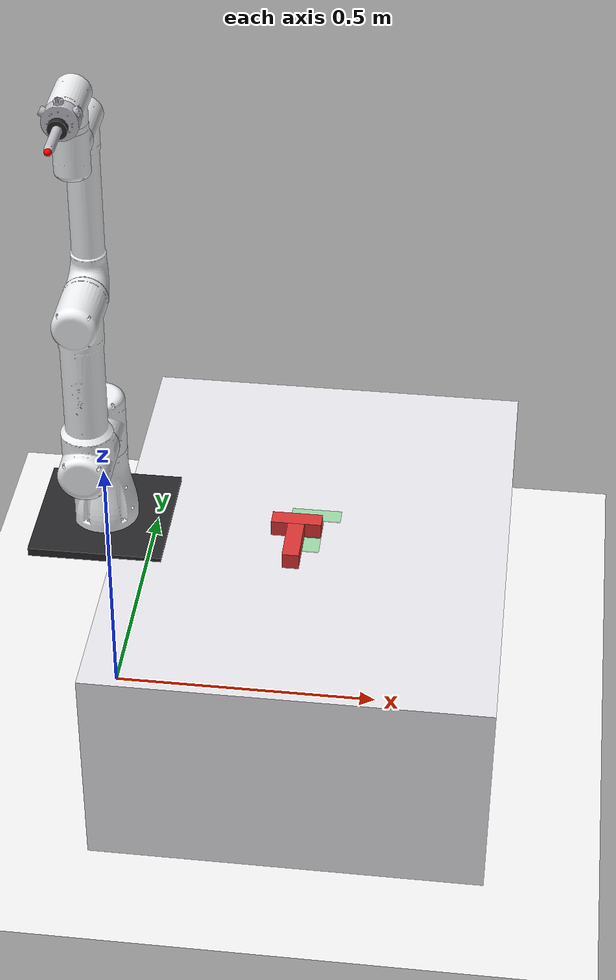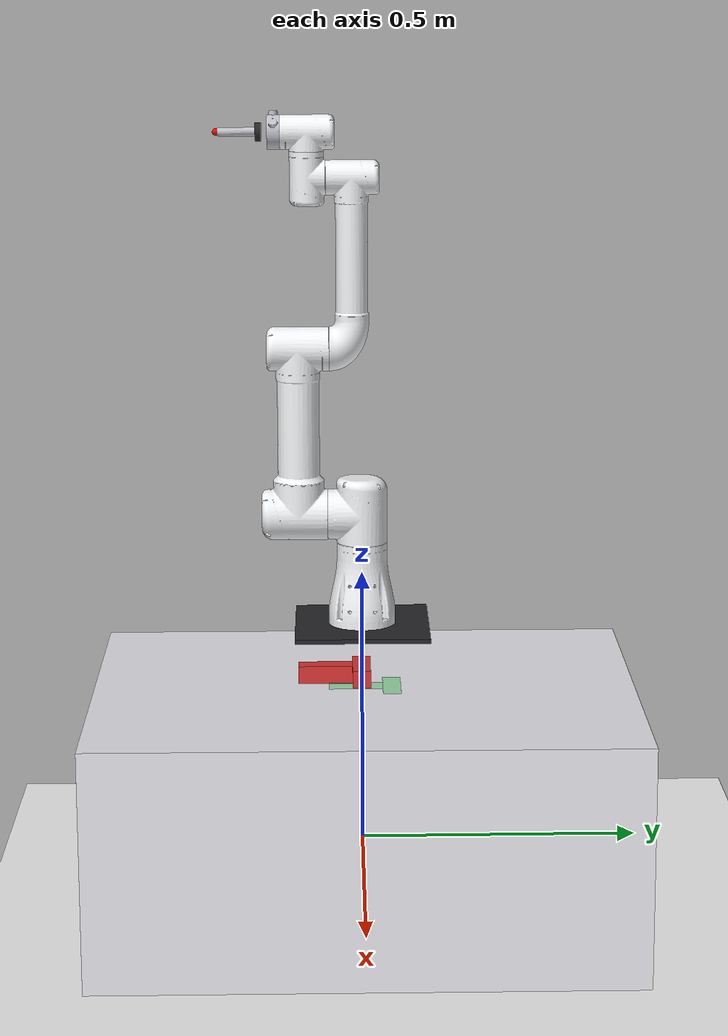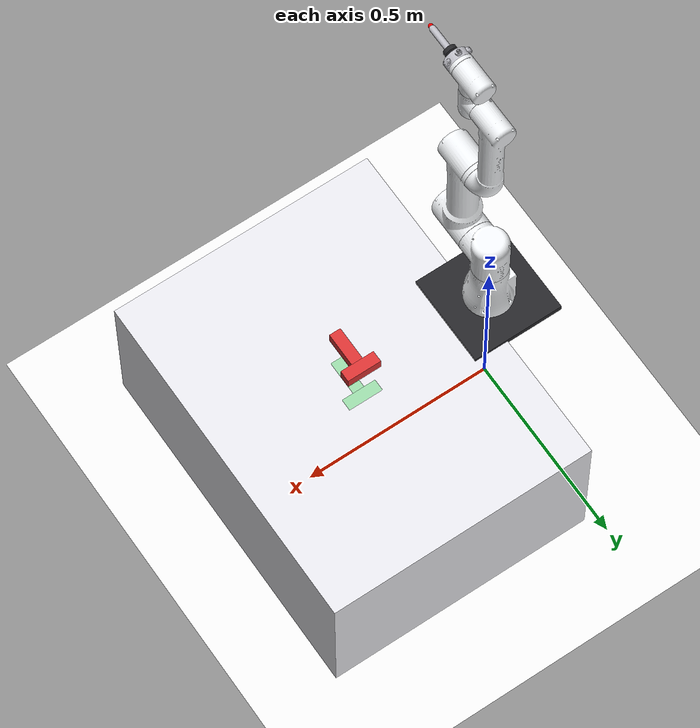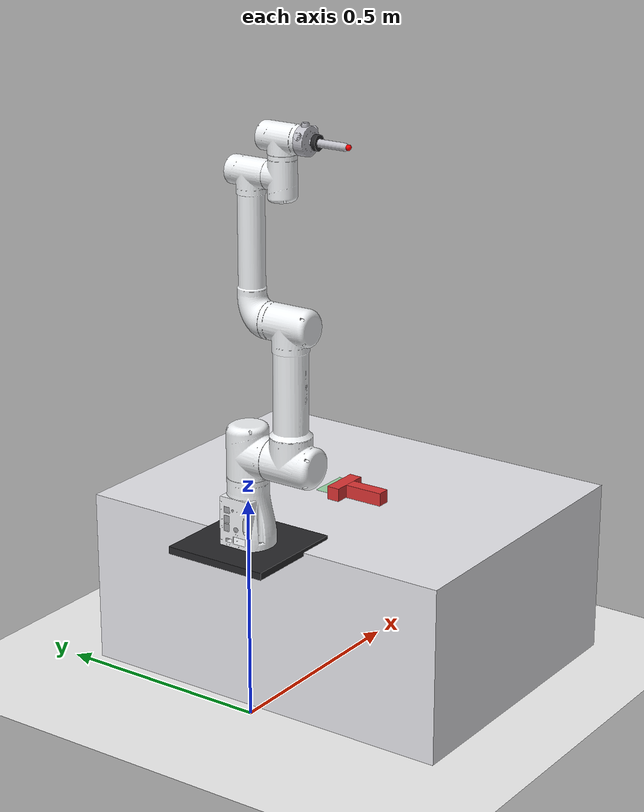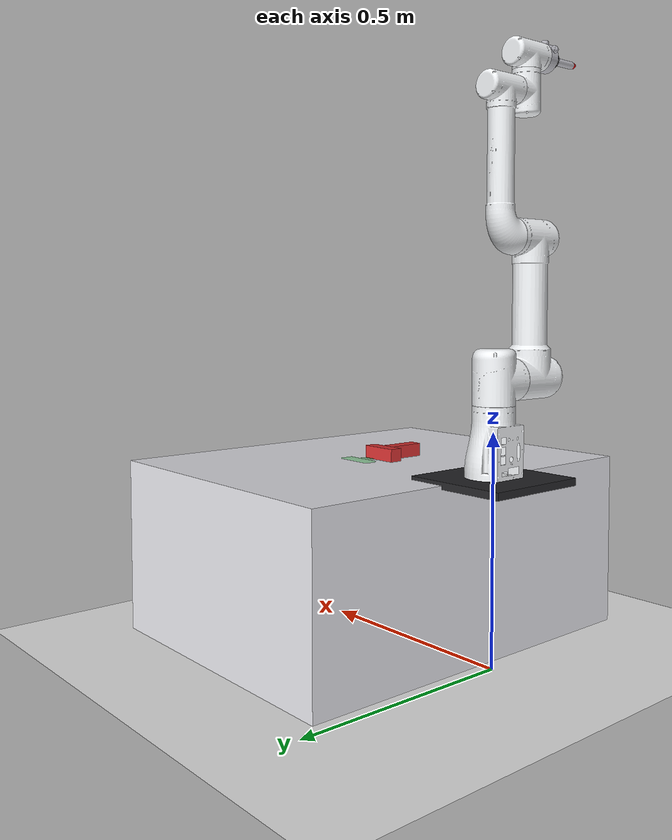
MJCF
<mujoco model="blinx_openc3_real_pusht">
  <compiler angle="radian" coordinate="local" autolimits="true" meshdir="openc3_real/meshes"/>

  <option timestep="0.002" integrator="implicitfast" solver="Newton" iterations="50" tolerance="1e-8">
    <flag contact="enable"/>
  </option>

  <asset>
    <!-- 真实 CAD 模型网格定义 -->
    <mesh name="Link0" file="Link0.STL"/>
    <mesh name="Link1" file="Link1.STL"/>
    <mesh name="Link2" file="Link2.STL"/>
    <mesh name="Link3" file="Link3.STL"/>
    <mesh name="Link4" file="Link4.STL"/>
    <mesh name="Link5" file="Link5.STL"/>
    <mesh name="Link6" file="Link6.STL"/>

    <!-- 材质定义 -->
    <material name="blinx_white" rgba="0.94 0.95 0.96 1.0" roughness="0.3" specular="0.4"/>
    <material name="blinx_blue" rgba="0.0 0.38 0.82 1.0" roughness="0.2" specular="0.6"/>
    <material name="dark_metal" rgba="0.15 0.15 0.16 1.0" roughness="0.5" specular="0.3"/>
    <material name="metal_flange" rgba="0.75 0.75 0.78 1.0" roughness="0.1" specular="0.8"/>
    <material name="table_mat" rgba="0.90 0.90 0.92 1.0" roughness="0.6"/>
    <material name="t_block_mat" rgba="0.85 0.2 0.2 1.0" roughness="0.3" specular="0.3"/>
    <material name="goal_mat" rgba="0.2 0.8 0.3 0.4"/>
  </asset>

  <default>
    <joint damping="0.5" armature="0.01" frictionloss="0.1"/>
    <!-- 增强位置伺服刚度，消除推运滞后引起的空推 -->
    <position kp="350" kv="25" forcelimited="true" forcerange="-80 80"/>
  </default>

  <visual>
    <headlight ambient="0.45 0.45 0.45" diffuse="0.75 0.75 0.75" specular="0.3 0.3 0.3"/>
    <quality shadowsize="2048" offsamples="4"/>
  </visual>

  <worldbody>
    <geom name="floor" type="plane" size="2 2 0.1" rgba="0.95 0.95 0.95 1"/>
    <light directional="true" pos="0.2 0.2 2.5" dir="-0.2 -0.2 -1" diffuse="0.8 0.8 0.8" specular="0.3 0.3 0.3"/>

    <!-- 顶部全局观测相机 -->
    <camera name="top_cam" pos="0.38 0.0 0.85" euler="0 0.45 1.5708" fovy="48"/>

    <!-- 1. 工作台 (独立节点) -->
    <body name="table" pos="0.38 0 0.2">
      <geom name="table_top" type="box" size="0.35 0.45 0.2" material="table_mat"/>
      <body name="goal_marker" pos="0.0 0.0 0.201">
        <geom name="goal_stem" type="box" size="0.015 0.045 0.001" pos="0.0 -0.015 0" material="goal_mat" contype="0" conaffinity="0"/>
        <geom name="goal_bar" type="box" size="0.045 0.015 0.001" pos="0.0 0.045 0" material="goal_mat" contype="0" conaffinity="0"/>
      </body>
    </body>

    <!-- 2. 真实可推运的 T-Block 物块 (独立节点，严格放置在桌面上) -->
    <body name="tee_block" pos="0.35 -0.05 0.4155">
      <freejoint name="tee_joint"/>
      <geom name="t_stem" type="box" size="0.015 0.045 0.015" pos="0.0 -0.015 0" material="t_block_mat" mass="0.05"/>
      <geom name="t_bar" type="box" size="0.045 0.015 0.015" pos="0.0 0.045 0" material="t_block_mat" mass="0.06"/>
    </body>

    <!-- 3. 机械臂主体 (独立节点) -->
    <body name="openc3_base_plate" pos="0 0 0.4">
      <geom name="base_plate_geom" type="box" size="0.12 0.12 0.008" material="dark_metal"/>

      <!-- Link0 -->
      <body name="Link0" pos="0 0 0.008">
        <inertial pos="0.0085775 0.0001082 0.0602812" mass="0.4745" diaginertia="0.0013548 0.0011364 0.00092109"/>
        <geom type="mesh" mesh="Link0" material="blinx_white"/>

        <!-- Link1 -->
        <body name="Link1" pos="0 0 0.2" quat="0.5 0.5 0.5 -0.5">
          <joint name="joint1" type="hinge" axis="1 0 0" range="-3.054 3.054"/>
          <inertial pos="-0.00608 0 0.00419" mass="0.8038" diaginertia="0.0008805 0.0008464 0.0008258"/>
          <geom type="mesh" mesh="Link1" material="blinx_white"/>

          <!-- Link2 -->
          <body name="Link2" pos="-0.2995 0 0.01625" quat="0.707107 0 0 -0.707107">
            <!-- 核心修复：添加 pos，将旋转锚点从手肘拉回肩部 (0, 0.2995, -0.01625) -->
            <joint name="joint2" type="hinge" pos="0 0.2995 -0.01625" axis="0 0 -1" range="-2.094 2.094"/>
            <inertial pos="0 0.16861 0.09883" mass="2.1259" diaginertia="0.0039186 0.0017835 0.0039804"/>
            <geom type="mesh" mesh="Link2" material="blinx_white"/>

            <!-- Link3 -->
            <body name="Link3" pos="0 -0.301 0">
              <!-- 核心修复：添加 pos，将旋转锚点从手腕拉回手肘 (0, 0.301, 0) -->
              <joint name="joint3" type="hinge" pos="0 0.301 0" axis="0 0 -1" range="-2.618 2.618"/>
              <inertial pos="0 0.14455 0.00184" mass="1.0226" diaginertia="0.0020493 0.0004861 0.0020479"/>
              <geom type="mesh" mesh="Link3" material="blinx_white"/>

              <!-- Link4 -->
              <body name="Link4" pos="0 0 0.07775" quat="0.5 0.5 0.5 -0.5">
                <joint name="joint4" type="hinge" axis="1 0 0" range="-3.054 3.054"/>
                <inertial pos="0.00269 0 -0.00483" mass="0.2628" diaginertia="0.0001306 0.0001326 0.0001289"/>
                <geom type="mesh" mesh="Link4" material="blinx_white"/>

                <!-- Link5 -->
                <body name="Link5" pos="0 0 0.0785" quat="0.707107 -0.707107 0 0">
                  <joint name="joint5" type="hinge" axis="0 1 0" range="-3.054 3.054"/>
                  <inertial pos="0.0049 0.00216 0" mass="0.2589" diaginertia="0.0001272 0.0001273 0.0001309"/>
                  <geom type="mesh" mesh="Link5" material="blinx_white"/>

                  <!-- Link6 (末端法兰) -->
                  <body name="Link6" pos="-0.07825 0 0">
                    <joint name="joint6" type="hinge" axis="1 0 0" range="-3.054 3.054"/>
                    <inertial pos="0.02174 -0.00213 0.00014" mass="0.0352" diaginertia="2.088E-05 1.276E-05 1.280E-05"/>
                    <geom type="mesh" mesh="Link6" material="metal_flange"/>

                    <!-- 手眼相机同步调整至朝向推杆外侧 -->
                    <camera name="wrist_cam" pos="-0.04 0 0.045" euler="0 0.45 1.5708" fovy="58"/>

                    <!-- 将 Link6 末端推杆修改为平滑胶囊体，消除边缘奇异性 -->
                    <body name="pusher_tool" pos="0 0 0">
                      <geom name="pusher_base" type="cylinder" fromto="0 0 0 -0.01 0 0" size="0.016" material="dark_metal"/>
                      <geom name="pusher_tip" type="capsule" fromto="-0.01 0 0 -0.07 0 0" size="0.008" material="metal_flange"/>
                      <site name="pusher_site" pos="-0.078 0 0" size="0.006" rgba="1 0 0 1"/>
                    </body>

                    <!-- 虚拟 7D 动作占位关节 (必须保留，供动作空间对齐) -->
                    <body name="dummy_gripper_link" pos="0 0 0">
                      <joint name="dummy_tool_joint" type="slide" axis="1 0 0" range="0 0.01"/>
                      <geom name="dummy_geom" type="sphere" size="0.001" mass="0.001" contype="0" conaffinity="0"/>
                    </body>

                  </body> <!-- end Link6 -->
                </body> <!-- end Link5 -->
              </body> <!-- end Link4 -->
            </body> <!-- end Link3 -->
          </body> <!-- end Link2 -->
        </body> <!-- end Link1 -->
      </body> <!-- end Link0 -->
    </body> <!-- end openc3_base_plate -->
  </worldbody>

  <contact>
    <pair geom1="pusher_tip" geom2="t_stem" friction="0.4 0.05 0.0001" solref="0.008 1.0" solimp="0.8 0.95 0.001"/>
    <pair geom1="pusher_tip" geom2="t_bar" friction="0.4 0.05 0.0001" solref="0.008 1.0" solimp="0.8 0.95 0.001"/>
    <pair geom1="table_top" geom2="t_stem" friction="0.35 0.1 0.0001" solref="0.015 1.0" solimp="0.9 0.95 0.001"/>
    <pair geom1="table_top" geom2="t_bar" friction="0.35 0.1 0.0001" solref="0.015 1.0" solimp="0.9 0.95 0.001"/>
  </contact>

  <actuator>
    <position name="act_j1" joint="joint1" ctrlrange="-3.054 3.054"/>
    <position name="act_j2" joint="joint2" ctrlrange="-2.094 2.094"/>
    <position name="act_j3" joint="joint3" ctrlrange="-2.618 2.618"/>
    <position name="act_j4" joint="joint4" ctrlrange="-3.054 3.054"/>
    <position name="act_j5" joint="joint5" ctrlrange="-3.054 3.054"/>
    <position name="act_j6" joint="joint6" ctrlrange="-3.054 3.054"/>
    <position name="act_tool" joint="dummy_tool_joint" ctrlrange="0 0.01" kp="10" kv="1"/>
  </actuator>
</mujoco>
